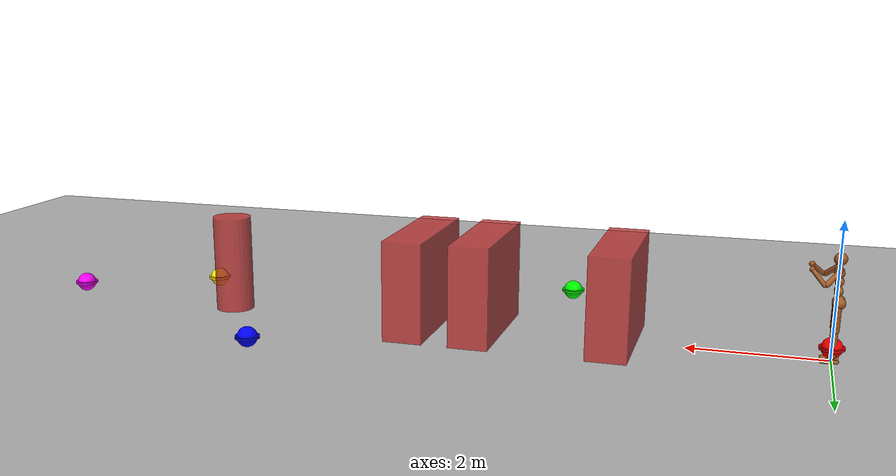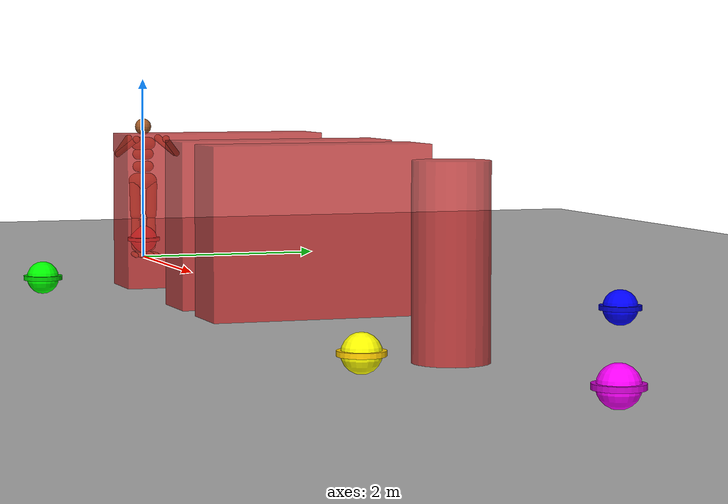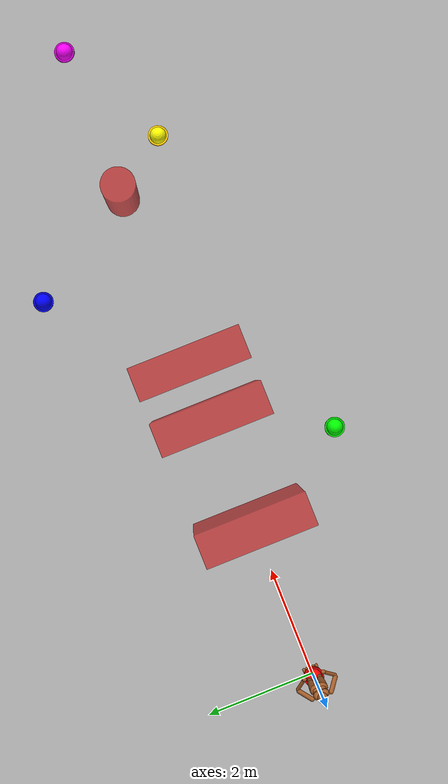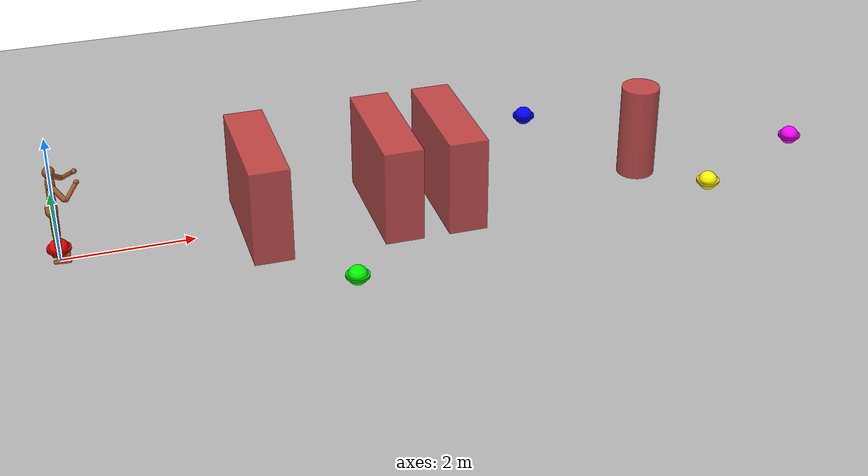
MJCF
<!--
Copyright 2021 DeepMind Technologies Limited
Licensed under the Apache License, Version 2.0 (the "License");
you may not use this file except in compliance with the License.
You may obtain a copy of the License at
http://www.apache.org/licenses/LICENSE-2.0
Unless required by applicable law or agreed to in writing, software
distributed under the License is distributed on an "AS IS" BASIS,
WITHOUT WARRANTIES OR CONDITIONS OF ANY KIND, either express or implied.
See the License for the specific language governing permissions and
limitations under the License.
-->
<?xml version="1.0" encoding="UTF-8"?>
<mujoco model="DeepMind Humanoid with Dynamic Obstacles and Moving Patrol Points">

  <compiler angle="radian" inertiafromgeom="true"/>
  <option timestep="0.005" integrator="RK4" gravity="0 0 -9.81"/>

  <visual>
    <map force="0.1" zfar="30"/>
    <rgba haze="0.15 0.25 0.35 1"/>
    <global offwidth="2560" offheight="1440" elevation="-20" azimuth="120"/>
  </visual>

  <statistic center="0 0 0.7"/>

  <!-- Visual materials definition -->
  <asset>
    <texture type="skybox" builtin="gradient" rgb1=".3 .5 .7" rgb2="0 0 0" width="32" height="512"/>
    <texture name="body" type="cube" builtin="flat" mark="cross" width="128" height="128" rgb1="0.8 0.6 0.4" rgb2="0.8 0.6 0.4" markrgb="1 1 1"/>
    <material name="humanoid_material" texture="body" texuniform="true" rgba="0.8 0.6 .4 1"/>
    <material name="obstacle_material" rgba="0.8 0.2 0.2 0.8"/>
    <material name="target_material" rgba="1 0 0 1"/>
    <material name="target_base_material" rgba="0.8 0 0 1"/>
    <texture name="grid" type="2d" builtin="checker" rgb1="0.8 0.8 0.8" rgb2="0.6 0.6 0.6" width="512" height="512"/>
    <material name="floor_material" texture="grid" texrepeat="10 10" reflectance="0.1"/>
  </asset>

  <default>
    <motor ctrlrange="-1 1" ctrllimited="true"/>
    <default class="body">

      <!-- geoms -->
      <geom type="capsule" condim="1" friction=".7" solimp=".9 .99 .003" solref=".015 1" material="humanoid_material" group="1"/>
      <default class="thigh">
        <geom size=".06"/>
      </default>
      <default class="shin">
        <geom fromto="0 0 0 0 0 -.3"  size=".049"/>
      </default>
      <default class="foot">
        <geom size=".027"/>
        <default class="foot1">
          <geom fromto="-.07 -.01 0 .14 -.03 0"/>
        </default>
        <default class="foot2">
          <geom fromto="-.07 .01 0 .14  .03 0"/>
        </default>
      </default>
      <default class="arm_upper">
        <geom size=".04"/>
      </default>
      <default class="arm_lower">
        <geom size=".031"/>
      </default>
      <default class="hand">
        <geom type="sphere" size=".04"/>
      </default>

      <!-- joints -->
      <joint type="hinge" damping=".2" stiffness="1" armature=".01" limited="true" solimplimit="0 .99 .01"/>
      <default class="joint_big">
        <joint damping="5" stiffness="10"/>
        <default class="hip_x">
          <joint range="-30 10"/>
        </default>
        <default class="hip_z">
          <joint range="-60 35"/>
        </default>
        <default class="hip_y">
          <joint axis="0 1 0" range="-150 20"/>
        </default>
        <default class="joint_big_stiff">
          <joint stiffness="20"/>
        </default>
      </default>
      <default class="knee">
        <joint pos="0 0 .02" axis="0 -1 0" range="-160 2"/>
      </default>
      <default class="ankle">
        <joint range="-50 50"/>
        <default class="ankle_y">
          <joint pos="0 0 .08" axis="0 1 0" stiffness="6"/>
        </default>
        <default class="ankle_x">
          <joint pos="0 0 .04" stiffness="3"/>
        </default>
      </default>
      <default class="shoulder">
        <joint range="-85 60"/>
      </default>
      <default class="elbow">
        <joint range="-100 50" stiffness="0"/>
      </default>
    </default>
  </default>

  <!-- World body: floor + obstacles + DYNAMIC patrol points -->
  <worldbody>
    <!-- Floor -->
    <geom name="floor" type="plane" size="20 20 0.1" material="floor_material" condim="3"/>

    <!-- Fixed obstacle (wall1) -->
    <body name="wall1" pos="3 0 0.5">
      <inertial pos="0 0 0" mass="100.0" diaginertia="10.0 10.0 10.0"/>
      <geom name="wall1_geom" type="box" size="0.3 1.0 1.0" material="obstacle_material" condim="3"/>
    </body>

    <!-- Dynamic obstacle 1 (wall2: Sinusoidal Y+Z motion) -->
    <body name="wall2_base" pos="5 0 0">
      <inertial pos="0 0 0" mass="100.0" diaginertia="10.0 10.0 10.0"/>
      <!-- Y-axis slide joint -->
      <joint name="wall2_slide_y" type="slide" axis="0 1 0" pos="0 0 0"/>
      <!-- Z-axis slide joint -->
      <body name="wall2_z_base" pos="0 0 0.5">
        <inertial pos="0 0 0" mass="50.0" diaginertia="5.0 5.0 5.0"/>
        <joint name="wall2_slide_z" type="slide" axis="0 0 1" pos="0 0 0"/>
        <!-- Obstacle body -->
        <body name="wall2" pos="0 0 0">
          <inertial pos="0 0 0" mass="50.0" diaginertia="5.0 5.0 5.0"/>
          <geom name="wall2_geom" type="box" size="0.3 1.0 1.0" material="obstacle_material" condim="3"/>
        </body>
      </body>
    </body>

    <!-- Dynamic obstacle 2 (wall3: Random walk X+Y) -->
    <body name="wall3_base" pos="6 0 0">
      <inertial pos="0 0 0" mass="100.0" diaginertia="10.0 10.0 10.0"/>
      <!-- X-axis slide joint -->
      <joint name="wall3_slide_x" type="slide" axis="1 0 0" pos="0 0 0"/>
      <!-- Y-axis slide joint -->
      <body name="wall3_y_base" pos="0 0 0.5">
        <inertial pos="0 0 0" mass="50.0" diaginertia="5.0 5.0 5.0"/>
        <joint name="wall3_slide_y" type="slide" axis="0 1 0" pos="0 0 0"/>
        <!-- Obstacle body -->
        <body name="wall3" pos="0 0 0">
          <inertial pos="0 0 0" mass="50.0" diaginertia="5.0 5.0 5.0"/>
          <geom name="wall3_geom" type="box" size="0.3 1.0 1.0" material="obstacle_material" condim="3"/>
        </body>
      </body>
    </body>

    <!-- Dynamic obstacle 3 (wall4: Circular motion) -->
    <body name="wall4_rot_base" pos="8 0 0">
      <inertial pos="0 0 0" mass="100.0" diaginertia="10.0 10.0 10.0"/>
      <!-- Rotation joint -->
      <joint name="wall4_rotate" type="hinge" axis="0 0 1" pos="0 0 0"/>
      <!-- Radial slide joint -->
      <body name="wall4_rad_base" pos="1.2 0 0.5">
        <inertial pos="0 0 0" mass="50.0" diaginertia="5.0 5.0 5.0"/>
        <joint name="wall4_radial" type="slide" axis="1 0 0" pos="0 0 0"/>
        <!-- Obstacle body -->
        <body name="wall4" pos="0 0 0">
          <inertial pos="0 0 0" mass="50.0" diaginertia="5.0 5.0 5.0"/>
          <geom name="wall4_geom" type="cylinder" size="0.3 1.0" material="obstacle_material" condim="3"/>
        </body>
      </body>
    </body>

    <!-- DYNAMIC Patrol Points (with slide joints for real-time movement) -->
    <!-- Patrol target 1 (Dynamic start point) -->
    <body name="patrol_target_1_base" pos="0 0 0">
      <inertial pos="0 0 0" mass="0.1" diaginertia="0.01 0.01 0.01"/>
      <!-- X/Y slide joints for dynamic movement -->
      <joint name="patrol1_slide_x" type="slide" axis="1 0 0" pos="0 0 0" damping="0.5"/>
      <joint name="patrol1_slide_y" type="slide" axis="0 1 0" pos="0 0 0" damping="0.5"/>
      <!-- Target marker body -->
      <body name="patrol_target_1" pos="0 0 0.2">
        <inertial pos="0 0 0" mass="0.1" diaginertia="0.01 0.01 0.01"/>
        <geom name="patrol_marker_1" type="sphere" size="0.15" material="target_material" condim="3"/>
        <geom name="patrol_base_1" type="cylinder" size="0.18 0.02" material="target_base_material" condim="3"/>
      </body>
    </body>

    <!-- Patrol target 2 (Dynamic patrol point 1) -->
    <body name="patrol_target_2_base" pos="4 -2 0">
      <inertial pos="0 0 0" mass="0.1" diaginertia="0.01 0.01 0.01"/>
      <joint name="patrol2_slide_x" type="slide" axis="1 0 0" pos="0 0 0" damping="0.5"/>
      <joint name="patrol2_slide_y" type="slide" axis="0 1 0" pos="0 0 0" damping="0.5"/>
      <body name="patrol_target_2" pos="0 0 0.2">
        <inertial pos="0 0 0" mass="0.1" diaginertia="0.01 0.01 0.01"/>
        <geom name="patrol_marker_2" type="sphere" size="0.15" rgba="0 1 0 1" condim="3"/>
        <geom name="patrol_base_2" type="cylinder" size="0.18 0.02" rgba="0 0.8 0 1" condim="3"/>
      </body>
    </body>

    <!-- Patrol target 3 (Dynamic patrol point 2) -->
    <body name="patrol_target_3_base" pos="8 2 0">
      <inertial pos="0 0 0" mass="0.1" diaginertia="0.01 0.01 0.01"/>
      <joint name="patrol3_slide_x" type="slide" axis="1 0 0" pos="0 0 0" damping="0.5"/>
      <joint name="patrol3_slide_y" type="slide" axis="0 1 0" pos="0 0 0" damping="0.5"/>
      <body name="patrol_target_3" pos="0 0 0.2">
        <inertial pos="0 0 0" mass="0.1" diaginertia="0.01 0.01 0.01"/>
        <geom name="patrol_marker_3" type="sphere" size="0.15" rgba="0 0 1 1" condim="3"/>
        <geom name="patrol_base_3" type="cylinder" size="0.18 0.02" rgba="0 0 0.8 1" condim="3"/>
      </body>
    </body>

    <!-- Patrol target 4 (Dynamic patrol point 3) -->
    <body name="patrol_target_4_base" pos="10 -1 0">
      <inertial pos="0 0 0" mass="0.1" diaginertia="0.01 0.01 0.01"/>
      <joint name="patrol4_slide_x" type="slide" axis="1 0 0" pos="0 0 0" damping="0.5"/>
      <joint name="patrol4_slide_y" type="slide" axis="0 1 0" pos="0 0 0" damping="0.5"/>
      <body name="patrol_target_4" pos="0 0 0.2">
        <inertial pos="0 0 0" mass="0.1" diaginertia="0.01 0.01 0.01"/>
        <geom name="patrol_marker_4" type="sphere" size="0.15" rgba="1 1 0 1" condim="3"/>
        <geom name="patrol_base_4" type="cylinder" size="0.18 0.02" rgba="1 0.8 0 1" condim="3"/>
      </body>
    </body>

    <!-- Patrol target 5 (Dynamic final point) -->
    <body name="patrol_target_5_base" pos="12 0 0">
      <inertial pos="0 0 0" mass="0.1" diaginertia="0.01 0.01 0.01"/>
      <joint name="patrol5_slide_x" type="slide" axis="1 0 0" pos="0 0 0" damping="0.5"/>
      <joint name="patrol5_slide_y" type="slide" axis="0 1 0" pos="0 0 0" damping="0.5"/>
      <body name="patrol_target_5" pos="0 0 0.2">
        <inertial pos="0 0 0" mass="0.1" diaginertia="0.01 0.01 0.01"/>
        <geom name="patrol_marker_5" type="sphere" size="0.15" rgba="1 0 1 1" condim="3"/>
        <geom name="patrol_base_5" type="cylinder" size="0.18 0.02" rgba="0.8 0 0.8 1" condim="3"/>
      </body>
    </body>

    <!-- DeepMind Humanoid Robot -->
    <body name="torso" pos="0 0 1.282" childclass="body">
      <camera name="back" pos="-3 0 1" xyaxes="0 -1 0 1 0 2" mode="trackcom"/>
      <camera name="side" pos="0 -3 1" xyaxes="1 0 0 0 1 2" mode="trackcom"/>
      <freejoint name="root"/>
      <geom name="torso" fromto="0 -.07 0 0 .07 0" size=".07"/>
      <geom name="waist_upper" fromto="-.01 -.06 -.12 -.01 .06 -.12" size=".06"/>
      <body name="head" pos="0 0 .19">
        <geom name="head" type="sphere" size=".09"/>
        <camera name="egocentric" pos=".09 0 0" xyaxes="0 -1 0 .1 0 1" fovy="80"/>
      </body>
      <body name="waist_lower" pos="-.01 0 -.26">
        <geom name="waist_lower" fromto="0 -.06 0 0 .06 0" size=".06"/>
        <joint name="abdomen_z" pos="0 0 .065" axis="0 0 1" range="-45 45" class="joint_big_stiff"/>
        <joint name="abdomen_y" pos="0 0 .065" axis="0 1 0" range="-75 30" class="joint_big"/>
        <body name="pelvis" pos="0 0 -.165">
          <joint name="abdomen_x" pos="0 0 .1" axis="1 0 0" range="-35 35" class="joint_big"/>
          <geom name="butt" fromto="-.02 -.07 0 -.02 .07 0" size=".09"/>
          <body name="thigh_right" pos="0 -.1 -.04">
            <joint name="hip_x_right" axis="1 0 0" class="hip_x"/>
            <joint name="hip_z_right" axis="0 0 1" class="hip_z"/>
            <joint name="hip_y_right" class="hip_y"/>
            <geom name="thigh_right" fromto="0 0 0 0 .01 -.34" class="thigh"/>
            <body name="shin_right" pos="0 .01 -.4">
              <joint name="knee_right" class="knee"/>
              <geom name="shin_right" class="shin"/>
              <body name="foot_right" pos="0 0 -.39">
                <joint name="ankle_y_right" class="ankle_y"/>
                <joint name="ankle_x_right" class="ankle_x" axis="1 0 .5"/>
                <geom name="foot1_right" class="foot1"/>
                <geom name="foot2_right" class="foot2"/>
              </body>
            </body>
          </body>
          <body name="thigh_left" pos="0 .1 -.04">
            <joint name="hip_x_left" axis="-1 0 0" class="hip_x"/>
            <joint name="hip_z_left" axis="0 0 -1" class="hip_z"/>
            <joint name="hip_y_left" class="hip_y"/>
            <geom name="thigh_left" fromto="0 0 0 0 -.01 -.34" class="thigh"/>
            <body name="shin_left" pos="0 -.01 -.4">
              <joint name="knee_left" class="knee"/>
              <geom name="shin_left" fromto="0 0 0 0 0 -.3" class="shin"/>
              <body name="foot_left" pos="0 0 -.39">
                <joint name="ankle_y_left" class="ankle_y"/>
                <joint name="ankle_x_left" class="ankle_x" axis="-1 0 -.5"/>
                <geom name="foot1_left" class="foot1"/>
                <geom name="foot2_left" class="foot2"/>
              </body>
            </body>
          </body>
        </body>
      </body>
      <body name="upper_arm_right" pos="0 -.17 .06">
        <joint name="shoulder1_right" axis="2 1 1"  class="shoulder"/>
        <joint name="shoulder2_right" axis="0 -1 1" class="shoulder"/>
        <geom name="upper_arm_right" fromto="0 0 0 .16 -.16 -.16" class="arm_upper"/>
        <body name="lower_arm_right" pos=".18 -.18 -.18">
          <joint name="elbow_right" axis="0 -1 1" class="elbow"/>
          <geom name="lower_arm_right" fromto=".01 .01 .01 .17 .17 .17" class="arm_lower"/>
          <body name="hand_right" pos=".18 .18 .18">
            <geom name="hand_right" zaxis="1 1 1" class="hand"/>
          </body>
        </body>
      </body>
      <body name="upper_arm_left" pos="0 .17 .06">
        <joint name="shoulder1_left" axis="-2 1 -1" class="shoulder"/>
        <joint name="shoulder2_left" axis="0 -1 -1"  class="shoulder"/>
        <geom name="upper_arm_left" fromto="0 0 0 .16 .16 -.16" class="arm_upper"/>
        <body name="lower_arm_left" pos=".18 .18 -.18">
          <joint name="elbow_left" axis="0 -1 -1" class="elbow"/>
          <geom name="lower_arm_left" fromto=".01 -.01 .01 .17 -.17 .17" class="arm_lower"/>
          <body name="hand_left" pos=".18 -.18 .18">
            <geom name="hand_left" zaxis="1 -1 1" class="hand"/>
          </body>
        </body>
      </body>
    </body>
  </worldbody>

  <contact>
    <exclude body1="waist_lower" body2="thigh_right"/>
    <exclude body1="waist_lower" body2="thigh_left"/>

    <!-- Robot-floor contact -->
    <pair geom1="floor" geom2="foot1_right" friction="1.0 0.1 0.01"/>
    <pair geom1="floor" geom2="foot2_right" friction="1.0 0.1 0.01"/>
    <pair geom1="floor" geom2="foot1_left" friction="1.0 0.1 0.01"/>
    <pair geom1="floor" geom2="foot2_left" friction="1.0 0.1 0.01"/>
    <pair geom1="floor" geom2="torso" friction="0.5 0.1 0.01"/>
    <pair geom1="floor" geom2="head" friction="0.5 0.1 0.01"/>
    <pair geom1="floor" geom2="upper_arm_right" friction="0.5 0.1 0.01"/>
    <pair geom1="floor" geom2="upper_arm_left" friction="0.5 0.1 0.01"/>
    <pair geom1="floor" geom2="lower_arm_right" friction="0.5 0.1 0.01"/>
    <pair geom1="floor" geom2="lower_arm_left" friction="0.5 0.1 0.01"/>
    <pair geom1="floor" geom2="thigh_right" friction="0.5 0.1 0.01"/>
    <pair geom1="floor" geom2="thigh_left" friction="0.5 0.1 0.01"/>
    <pair geom1="floor" geom2="shin_right" friction="0.5 0.1 0.01"/>
    <pair geom1="floor" geom2="shin_left" friction="0.5 0.1 0.01"/>

    <!-- Robot-obstacle contact -->
    <pair geom1="wall1_geom" geom2="torso" friction="0.8 0.1 0.01"/>
    <pair geom1="wall1_geom" geom2="foot1_right" friction="0.8 0.1 0.01"/>
    <pair geom1="wall1_geom" geom2="foot2_right" friction="0.8 0.1 0.01"/>
    <pair geom1="wall1_geom" geom2="foot1_left" friction="0.8 0.1 0.01"/>
    <pair geom1="wall1_geom" geom2="foot2_left" friction="0.8 0.1 0.01"/>
    <pair geom1="wall2_geom" geom2="torso" friction="0.8 0.1 0.01"/>
    <pair geom1="wall2_geom" geom2="foot1_right" friction="0.8 0.1 0.01"/>
    <pair geom1="wall2_geom" geom2="foot2_right" friction="0.8 0.1 0.01"/>
    <pair geom1="wall2_geom" geom2="foot1_left" friction="0.8 0.1 0.01"/>
    <pair geom1="wall2_geom" geom2="foot2_left" friction="0.8 0.1 0.01"/>
    <pair geom1="wall3_geom" geom2="torso" friction="0.8 0.1 0.01"/>
    <pair geom1="wall3_geom" geom2="foot1_right" friction="0.8 0.1 0.01"/>
    <pair geom1="wall3_geom" geom2="foot2_right" friction="0.8 0.1 0.01"/>
    <pair geom1="wall3_geom" geom2="foot1_left" friction="0.8 0.1 0.01"/>
    <pair geom1="wall3_geom" geom2="foot2_left" friction="0.8 0.1 0.01"/>
    <pair geom1="wall4_geom" geom2="torso" friction="0.8 0.1 0.01"/>
    <pair geom1="wall4_geom" geom2="foot1_right" friction="0.8 0.1 0.01"/>
    <pair geom1="wall4_geom" geom2="foot2_right" friction="0.8 0.1 0.01"/>
    <pair geom1="wall4_geom" geom2="foot1_left" friction="0.8 0.1 0.01"/>
    <pair geom1="wall4_geom" geom2="foot2_left" friction="0.8 0.1 0.01"/>

    <!-- Obstacle-obstacle contact -->
    <pair geom1="wall1_geom" geom2="wall2_geom" friction="0.5 0.1 0.01"/>
    <pair geom1="wall1_geom" geom2="wall3_geom" friction="0.5 0.1 0.01"/>
    <pair geom1="wall1_geom" geom2="wall4_geom" friction="0.5 0.1 0.01"/>
    <pair geom1="wall2_geom" geom2="wall3_geom" friction="0.5 0.1 0.01"/>
    <pair geom1="wall2_geom" geom2="wall4_geom" friction="0.5 0.1 0.01"/>
    <pair geom1="wall3_geom" geom2="wall4_geom" friction="0.5 0.1 0.01"/>

    <!-- Robot-patrol point contact (prevent collision) -->
    <pair geom1="torso" geom2="patrol_marker_1" friction="0.1 0.01 0.001"/>
    <pair geom1="torso" geom2="patrol_marker_2" friction="0.1 0.01 0.001"/>
    <pair geom1="torso" geom2="patrol_marker_3" friction="0.1 0.01 0.001"/>
    <pair geom1="torso" geom2="patrol_marker_4" friction="0.1 0.01 0.001"/>
    <pair geom1="torso" geom2="patrol_marker_5" friction="0.1 0.01 0.001"/>
  </contact>

  <tendon>
    <fixed name="hamstring_right" limited="true" range="-0.3 2">
      <joint joint="hip_y_right" coef=".5"/>
      <joint joint="knee_right" coef="-.5"/>
    </fixed>
    <fixed name="hamstring_left" limited="true" range="-0.3 2">
      <joint joint="hip_y_left" coef=".5"/>
      <joint joint="knee_left" coef="-.5"/>
    </fixed>
  </tendon>

  <!-- Actuators definition (robot + obstacles + DYNAMIC patrol points) -->
  <actuator>
    <!-- Original humanoid actuators -->
    <motor name="abdomen_z"       gear="40"  joint="abdomen_z"/>
    <motor name="abdomen_y"       gear="40"  joint="abdomen_y"/>
    <motor name="abdomen_x"       gear="40"  joint="abdomen_x"/>
    <motor name="hip_x_right"     gear="40"  joint="hip_x_right"/>
    <motor name="hip_z_right"     gear="40"  joint="hip_z_right"/>
    <motor name="hip_y_right"     gear="120" joint="hip_y_right"/>
    <motor name="knee_right"      gear="80"  joint="knee_right"/>
    <motor name="ankle_y_right"   gear="20"  joint="ankle_y_right"/>
    <motor name="ankle_x_right"   gear="20"  joint="ankle_x_right"/>
    <motor name="hip_x_left"      gear="40"  joint="hip_x_left"/>
    <motor name="hip_z_left"      gear="40"  joint="hip_z_left"/>
    <motor name="hip_y_left"      gear="120" joint="hip_y_left"/>
    <motor name="knee_left"       gear="80"  joint="knee_left"/>
    <motor name="ankle_y_left"    gear="20"  joint="ankle_y_left"/>
    <motor name="ankle_x_left"    gear="20"  joint="ankle_x_left"/>
    <motor name="shoulder1_right" gear="20"  joint="shoulder1_right"/>
    <motor name="shoulder2_right" gear="20"  joint="shoulder2_right"/>
    <motor name="elbow_right"     gear="40"  joint="elbow_right"/>
    <motor name="shoulder1_left"  gear="20"  joint="shoulder1_left"/>
    <motor name="shoulder2_left"  gear="20"  joint="shoulder2_left"/>
    <motor name="elbow_left"      gear="40"  joint="elbow_left"/>

    <!-- Dynamic obstacle actuators -->
    <motor name="wall2_motor_y" joint="wall2_slide_y" ctrlrange="-5.0 5.0" gear="10.0"/>
    <motor name="wall2_motor_z" joint="wall2_slide_z" ctrlrange="0.0 2.0" gear="8.0"/>
    <motor name="wall3_motor_x" joint="wall3_slide_x" ctrlrange="4.0 8.0" gear="10.0"/>
    <motor name="wall3_motor_y" joint="wall3_slide_y" ctrlrange="-3.0 3.0" gear="10.0"/>
    <motor name="wall4_motor_rot" joint="wall4_rotate" ctrlrange="-10.0 10.0" gear="5.0"/>
    <motor name="wall4_motor_rad" joint="wall4_radial" ctrlrange="0.5 2.0" gear="8.0"/>

    <!-- DYNAMIC Patrol Point Actuators (for real-time movement control) -->
    <motor name="patrol1_motor_x" joint="patrol1_slide_x" ctrlrange="-2.0 14.0" gear="5.0"/>
    <motor name="patrol1_motor_y" joint="patrol1_slide_y" ctrlrange="-5.0 5.0" gear="5.0"/>
    <motor name="patrol2_motor_x" joint="patrol2_slide_x" ctrlrange="-2.0 14.0" gear="5.0"/>
    <motor name="patrol2_motor_y" joint="patrol2_slide_y" ctrlrange="-5.0 5.0" gear="5.0"/>
    <motor name="patrol3_motor_x" joint="patrol3_slide_x" ctrlrange="-2.0 14.0" gear="5.0"/>
    <motor name="patrol3_motor_y" joint="patrol3_slide_y" ctrlrange="-5.0 5.0" gear="5.0"/>
    <motor name="patrol4_motor_x" joint="patrol4_slide_x" ctrlrange="-2.0 14.0" gear="5.0"/>
    <motor name="patrol4_motor_y" joint="patrol4_slide_y" ctrlrange="-5.0 5.0" gear="5.0"/>
    <motor name="patrol5_motor_x" joint="patrol5_slide_x" ctrlrange="-2.0 14.0" gear="5.0"/>
    <motor name="patrol5_motor_y" joint="patrol5_slide_y" ctrlrange="-5.0 5.0" gear="5.0"/>
  </actuator>

  <keyframe>
    <!--
    The values below are split into rows for readibility:
      torso position
      torso orientation
      spinal
      right leg
      left leg
      arms
    -->
    <key name="squat"
         qpos="0 0 0.596
               0.988015 0 0.154359 0
               0 0.4 0
               -0.25 -0.5 -2.5 -2.65 -0.8 0.56
               -0.25 -0.5 -2.5 -2.65 -0.8 0.56
               0 0 0 0 0 0"/>
    <key name="stand_on_left_leg"
         qpos="0 0 1.21948
               0.971588 -0.179973 0.135318 -0.0729076
               -0.0516 -0.202 0.23
               -0.24 -0.007 -0.34 -1.76 -0.466 -0.0415
               -0.08 -0.01 -0.37 -0.685 -0.35 -0.09
               0.109 -0.067 -0.7 -0.05 0.12 0.16"/>
    <key name="prone"
         qpos="0.4 0 0.0757706
               0.7325 0 0.680767 0
               0 0.0729 0
               0.0077 0.0019 -0.026 -0.351 -0.27 0
               0.0077 0.0019 -0.026 -0.351 -0.27 0
               0.56 -0.62 -1.752
               0.56 -0.62 -1.752"/>
    <key name="supine"
         qpos="-0.4 0 0.08122
               0.722788 0 -0.69107 0
               0 -0.25 0
               0.0182 0.0142 0.3 0.042 -0.44 -0.02
               0.0182 0.0142 0.3 0.042 -0.44 -0.02
               0.186 -0.73 -1.73
               0.186 -0.73 -1.73"/>
  </keyframe>
</mujoco>
